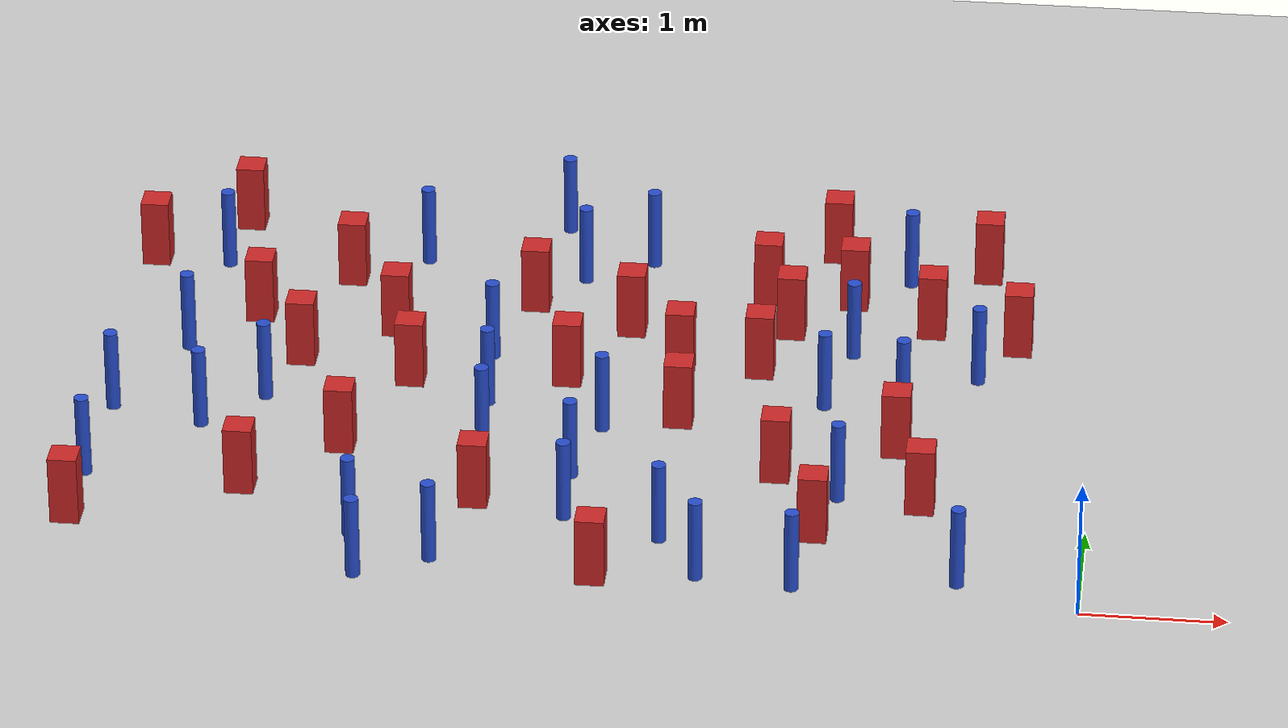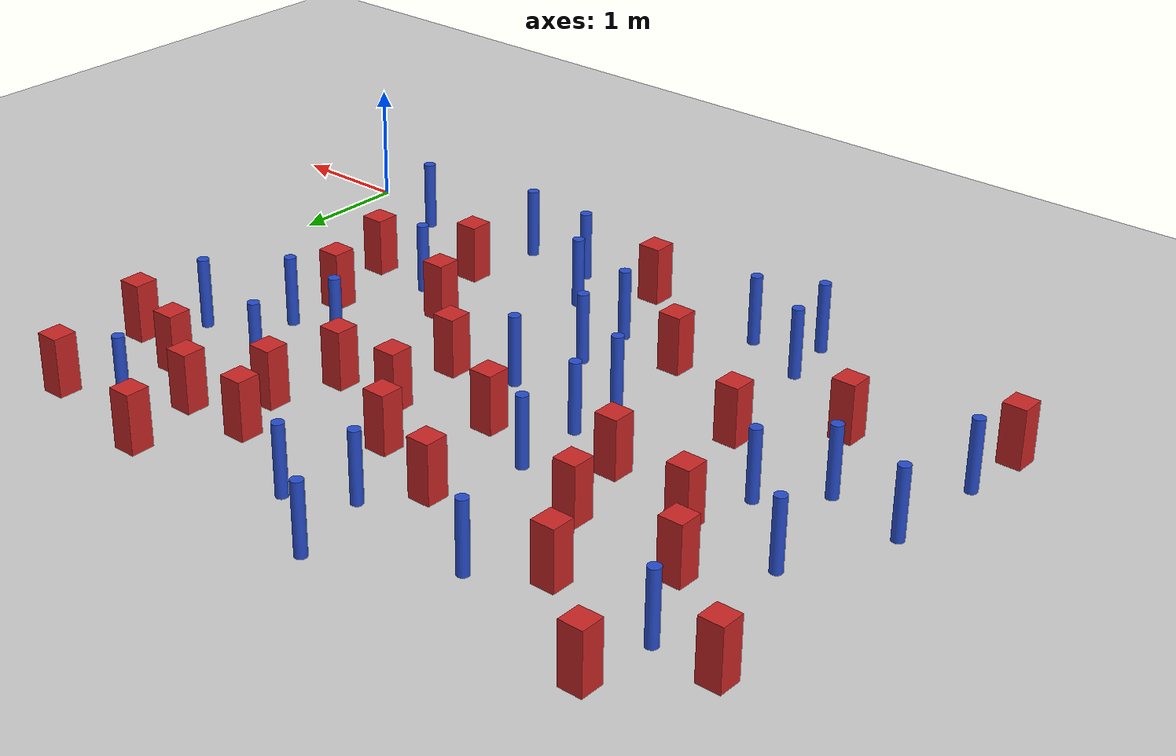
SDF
<sdf version="1.6">
 <world name="default">
  <model name="ground_plane">
   <static>1</static>
   <link name="link">
    <collision name="collision">
     <geometry><plane><normal>0 0 1</normal><size>100 100</size></plane></geometry>
     <surface><friction><ode><mu>100</mu><mu2>50</mu2></ode></friction></surface>
    </collision>
    <visual name="visual">
     <cast_shadows>0</cast_shadows>
     <geometry><plane><normal>0 0 1</normal><size>100 100</size></plane></geometry>
     <material>
      <ambient>1.0 1.0 1.0 1.0</ambient>
      <diffuse>0.8 0.8 0.8 1.0</diffuse>
      <specular>0.01 0.01 0.01 1.000000</specular>
     </material>
    </visual>
   </link>
  </model>
  <model name="square_post_obstacle0">
   <static>true</static>
   <pose>-1.84166888326 0.796225283095 1.91545236811e-07 -7.35059704564e-06 1.12565212e-07 2.39332434364e-05</pose>
   <link name="link">
    <pose>0 0 0.25 0 -0 0</pose>
    <inertial>
     <mass>100</mass>
     <inertia>
      <ixx>0.166667</ixx>
      <ixy>0</ixy>
      <ixz>0</ixz>
      <iyy>0.166667</iyy>
      <iyz>0</iyz>
      <izz>0.166667</izz>
     </inertia>
    </inertial>
    <collision name="collision"><geometry><box><size>.2 .2 .5</size></box></geometry></collision>
    <visual name="visual">
     <geometry><box><size>.2 .2 .5</size></box></geometry>
     <material>
      <script><name>Gazebo/Red</name><uri>file://media/materials/scripts/gazebo.material</uri></script>
     </material>
    </visual>
   </link>
  </model>
  <model name="pole_obstacle2">
   <static>true</static>
   <pose>-4.24991896851 2.30409226021 7.38925637345e-09 -8.47170692798e-08 1.24976764937e-08 -1.74513093023e-07</pose>
   <link name="link">
    <pose>0 0 0.3 0 -0 0</pose>
    <inertial>
     <mass>1</mass>
     <inertia><ixx>0.145833</ixx><ixy>0</ixy><ixz>0</ixz><iyy>0.145833</iyy><iyz>0</iyz><izz>0.125</izz></inertia>
    </inertial>
    <collision name="collision">
     <geometry><cylinder><radius>0.05</radius><length>.6</length></cylinder></geometry>
    </collision>
    <visual name="visual">
     <geometry><cylinder><radius>0.05</radius><length>.6</length></cylinder></geometry>
     <material>
      <script><name>Gazebo/Blue</name><uri>file://media/materials/scripts/gazebo.material</uri></script>
     </material>
    </visual>
   </link>
  </model>
  <model name="square_post_obstacle2">
   <static>true</static>
   <pose>-6.92443869913 0.52097010561 1.91545236811e-07 -7.35059704564e-06 1.12565212e-07 2.39332434364e-05</pose>
   <link name="link">
    <pose>0 0 0.25 0 -0 0</pose>
    <inertial>
     <mass>100</mass>
     <inertia>
      <ixx>0.166667</ixx>
      <ixy>0</ixy>
      <ixz>0</ixz>
      <iyy>0.166667</iyy>
      <iyz>0</iyz>
      <izz>0.166667</izz>
     </inertia>
    </inertial>
    <collision name="collision"><geometry><box><size>.2 .2 .5</size></box></geometry></collision>
    <visual name="visual">
     <geometry><box><size>.2 .2 .5</size></box></geometry>
     <material>
      <script><name>Gazebo/Red</name><uri>file://media/materials/scripts/gazebo.material</uri></script>
     </material>
    </visual>
   </link>
  </model>
  <model name="pole_obstacle13">
   <static>true</static>
   <pose>-1.71100634658 1.28023424929 7.38925637345e-09 -8.471706928e-08 1.24976765079e-08 -1.74513093017e-07</pose>
   <link name="link">
    <pose>0 0 0.3 0 -0 0</pose>
    <inertial>
     <mass>1</mass>
     <inertia><ixx>0.145833</ixx><ixy>0</ixy><ixz>0</ixz><iyy>0.145833</iyy><iyz>0</iyz><izz>0.125</izz></inertia>
    </inertial>
    <collision name="collision">
     <geometry><cylinder><radius>0.05</radius><length>.6</length></cylinder></geometry>
    </collision>
    <visual name="visual">
     <geometry><cylinder><radius>0.05</radius><length>.6</length></cylinder></geometry>
     <material>
      <script><name>Gazebo/Blue</name><uri>file://media/materials/scripts/gazebo.material</uri></script>
     </material>
    </visual>
   </link>
  </model>
  <model name="pole_obstacle19">
   <static>true</static>
   <pose>-6.45855339897 2.84667445079 7.38925637345e-09 -8.47170692798e-08 1.24976764937e-08 -1.74513093023e-07</pose>
   <link name="link">
    <pose>0 0 0.3 0 -0 0</pose>
    <inertial>
     <mass>1</mass>
     <inertia><ixx>0.145833</ixx><ixy>0</ixy><ixz>0</ixz><iyy>0.145833</iyy><iyz>0</iyz><izz>0.125</izz></inertia>
    </inertial>
    <collision name="collision">
     <geometry><cylinder><radius>0.05</radius><length>.6</length></cylinder></geometry>
    </collision>
    <visual name="visual">
     <geometry><cylinder><radius>0.05</radius><length>.6</length></cylinder></geometry>
     <material>
      <script><name>Gazebo/Blue</name><uri>file://media/materials/scripts/gazebo.material</uri></script>
     </material>
    </visual>
   </link>
  </model>
  <model name="square_post_obstacle18">
   <static>true</static>
   <pose>-1.79494129415 3.93874397708 1.91545236811e-07 -7.35059704564e-06 1.12565212e-07 2.39332434364e-05</pose>
   <link name="link">
    <pose>0 0 0.25 0 -0 0</pose>
    <inertial>
     <mass>100</mass>
     <inertia>
      <ixx>0.166667</ixx>
      <ixy>0</ixy>
      <ixz>0</ixz>
      <iyy>0.166667</iyy>
      <iyz>0</iyz>
      <izz>0.166667</izz>
     </inertia>
    </inertial>
    <collision name="collision"><geometry><box><size>.2 .2 .5</size></box></geometry></collision>
    <visual name="visual">
     <geometry><box><size>.2 .2 .5</size></box></geometry>
     <material>
      <script><name>Gazebo/Red</name><uri>file://media/materials/scripts/gazebo.material</uri></script>
     </material>
    </visual>
   </link>
  </model>
  <model name="pole_obstacle24">
   <static>true</static>
   <pose>-3.95093065033 4.80170679499 7.38925637345e-09 -8.47170692799e-08 1.24976764985e-08 -1.74513093022e-07</pose>
   <link name="link">
    <pose>0 0 0.3 0 -0 0</pose>
    <inertial>
     <mass>1</mass>
     <inertia><ixx>0.145833</ixx><ixy>0</ixy><ixz>0</ixz><iyy>0.145833</iyy><iyz>0</iyz><izz>0.125</izz></inertia>
    </inertial>
    <collision name="collision">
     <geometry><cylinder><radius>0.05</radius><length>.6</length></cylinder></geometry>
    </collision>
    <visual name="visual">
     <geometry><cylinder><radius>0.05</radius><length>.6</length></cylinder></geometry>
     <material>
      <script><name>Gazebo/Blue</name><uri>file://media/materials/scripts/gazebo.material</uri></script>
     </material>
    </visual>
   </link>
  </model>
  <model name="pole_obstacle25">
   <static>true</static>
   <pose>-6.90251473835 1.09132299942 7.38925637345e-09 -8.471706928e-08 1.24976765134e-08 -1.74513093015e-07</pose>
   <link name="link">
    <pose>0 0 0.3 0 -0 0</pose>
    <inertial>
     <mass>1</mass>
     <inertia><ixx>0.145833</ixx><ixy>0</ixy><ixz>0</ixz><iyy>0.145833</iyy><iyz>0</iyz><izz>0.125</izz></inertia>
    </inertial>
    <collision name="collision">
     <geometry><cylinder><radius>0.05</radius><length>.6</length></cylinder></geometry>
    </collision>
    <visual name="visual">
     <geometry><cylinder><radius>0.05</radius><length>.6</length></cylinder></geometry>
     <material>
      <script><name>Gazebo/Blue</name><uri>file://media/materials/scripts/gazebo.material</uri></script>
     </material>
    </visual>
   </link>
  </model>
  <model name="pole_obstacle30">
   <static>true</static>
   <pose>-1.89825903132 2.48471601839 7.38925637345e-09 -8.47170692799e-08 1.24976765053e-08 -1.74513093017e-07</pose>
   <link name="link">
    <pose>0 0 0.3 0 -0 0</pose>
    <inertial>
     <mass>1</mass>
     <inertia><ixx>0.145833</ixx><ixy>0</ixy><ixz>0</ixz><iyy>0.145833</iyy><iyz>0</iyz><izz>0.125</izz></inertia>
    </inertial>
    <collision name="collision">
     <geometry><cylinder><radius>0.05</radius><length>.6</length></cylinder></geometry>
    </collision>
    <visual name="visual">
     <geometry><cylinder><radius>0.05</radius><length>.6</length></cylinder></geometry>
     <material>
      <script><name>Gazebo/Blue</name><uri>file://media/materials/scripts/gazebo.material</uri></script>
     </material>
    </visual>
   </link>
  </model>
  <model name="square_post_obstacle23">
   <static>true</static>
   <pose>-0.857699240844 4.41628509227 1.91545236811e-07 -7.35059704564e-06 1.12565212e-07 2.39332434364e-05</pose>
   <link name="link">
    <pose>0 0 0.25 0 -0 0</pose>
    <inertial>
     <mass>100</mass>
     <inertia>
      <ixx>0.166667</ixx>
      <ixy>0</ixy>
      <ixz>0</ixz>
      <iyy>0.166667</iyy>
      <iyz>0</iyz>
      <izz>0.166667</izz>
     </inertia>
    </inertial>
    <collision name="collision"><geometry><box><size>.2 .2 .5</size></box></geometry></collision>
    <visual name="visual">
     <geometry><box><size>.2 .2 .5</size></box></geometry>
     <material>
      <script><name>Gazebo/Red</name><uri>file://media/materials/scripts/gazebo.material</uri></script>
     </material>
    </visual>
   </link>
  </model>
  <model name="square_post_obstacle26">
   <static>true</static>
   <pose>-5.42709398877 3.93280804061 1.91545236811e-07 -7.35059704564e-06 1.12565212e-07 2.39332434364e-05</pose>
   <link name="link">
    <pose>0 0 0.25 0 -0 0</pose>
    <inertial>
     <mass>100</mass>
     <inertia>
      <ixx>0.166667</ixx>
      <ixy>0</ixy>
      <ixz>0</ixz>
      <iyy>0.166667</iyy>
      <iyz>0</iyz>
      <izz>0.166667</izz>
     </inertia>
    </inertial>
    <collision name="collision"><geometry><box><size>.2 .2 .5</size></box></geometry></collision>
    <visual name="visual">
     <geometry><box><size>.2 .2 .5</size></box></geometry>
     <material>
      <script><name>Gazebo/Red</name><uri>file://media/materials/scripts/gazebo.material</uri></script>
     </material>
    </visual>
   </link>
  </model>
  <model name="pole_obstacle36">
   <static>true</static>
   <pose>-4.87840879598 -0.0129772248864 7.38925637345e-09 -8.471706928e-08 1.24976765076e-08 -1.74513093018e-07</pose>
   <link name="link">
    <pose>0 0 0.3 0 -0 0</pose>
    <inertial>
     <mass>1</mass>
     <inertia><ixx>0.145833</ixx><ixy>0</ixy><ixz>0</ixz><iyy>0.145833</iyy><iyz>0</iyz><izz>0.125</izz></inertia>
    </inertial>
    <collision name="collision">
     <geometry><cylinder><radius>0.05</radius><length>.6</length></cylinder></geometry>
    </collision>
    <visual name="visual">
     <geometry><cylinder><radius>0.05</radius><length>.6</length></cylinder></geometry>
     <material>
      <script><name>Gazebo/Blue</name><uri>file://media/materials/scripts/gazebo.material</uri></script>
     </material>
    </visual>
   </link>
  </model>
  <model name="pole_obstacle60">
   <static>true</static>
   <pose>-1.92962845941 0.116779656312 7.38925637345e-09 -8.47170692799e-08 1.24976765089e-08 -1.74513093016e-07</pose>
   <link name="link">
    <pose>0 0 0.3 0 -0 0</pose>
    <inertial>
     <mass>1</mass>
     <inertia><ixx>0.145833</ixx><ixy>0</ixy><ixz>0</ixz><iyy>0.145833</iyy><iyz>0</iyz><izz>0.125</izz></inertia>
    </inertial>
    <collision name="collision">
     <geometry><cylinder><radius>0.05</radius><length>.6</length></cylinder></geometry>
    </collision>
    <visual name="visual">
     <geometry><cylinder><radius>0.05</radius><length>.6</length></cylinder></geometry>
     <material>
      <script><name>Gazebo/Blue</name><uri>file://media/materials/scripts/gazebo.material</uri></script>
     </material>
    </visual>
   </link>
  </model>
  <model name="square_post_obstacle48">
   <static>true</static>
   <pose>-3.2810798544 0.108381300336 1.91545236811e-07 -7.35059704564e-06 1.12565212e-07 2.39332434364e-05</pose>
   <link name="link">
    <pose>0 0 0.25 0 -0 0</pose>
    <inertial>
     <mass>100</mass>
     <inertia>
      <ixx>0.166667</ixx>
      <ixy>0</ixy>
      <ixz>0</ixz>
      <iyy>0.166667</iyy>
      <iyz>0</iyz>
      <izz>0.166667</izz>
     </inertia>
    </inertial>
    <collision name="collision"><geometry><box><size>.2 .2 .5</size></box></geometry></collision>
    <visual name="visual">
     <geometry><box><size>.2 .2 .5</size></box></geometry>
     <material>
      <script><name>Gazebo/Red</name><uri>file://media/materials/scripts/gazebo.material</uri></script>
     </material>
    </visual>
   </link>
  </model>
  <model name="square_post_obstacle52">
   <static>true</static>
   <pose>-2.21235901721 3.48319267639 1.91545236811e-07 -7.35059704564e-06 1.12565212e-07 2.39332434364e-05</pose>
   <link name="link">
    <pose>0 0 0.25 0 -0 0</pose>
    <inertial>
     <mass>100</mass>
     <inertia>
      <ixx>0.166667</ixx>
      <ixy>0</ixy>
      <ixz>0</ixz>
      <iyy>0.166667</iyy>
      <iyz>0</iyz>
      <izz>0.166667</izz>
     </inertia>
    </inertial>
    <collision name="collision"><geometry><box><size>.2 .2 .5</size></box></geometry></collision>
    <visual name="visual">
     <geometry><box><size>.2 .2 .5</size></box></geometry>
     <material>
      <script><name>Gazebo/Red</name><uri>file://media/materials/scripts/gazebo.material</uri></script>
     </material>
    </visual>
   </link>
  </model>
  <model name="square_post_obstacle53">
   <static>true</static>
   <pose>-1.35628569744 1.9452621509 1.91545236811e-07 -7.35059704564e-06 1.12565212e-07 2.39332434364e-05</pose>
   <link name="link">
    <pose>0 0 0.25 0 -0 0</pose>
    <inertial>
     <mass>100</mass>
     <inertia>
      <ixx>0.166667</ixx>
      <ixy>0</ixy>
      <ixz>0</ixz>
      <iyy>0.166667</iyy>
      <iyz>0</iyz>
      <izz>0.166667</izz>
     </inertia>
    </inertial>
    <collision name="collision"><geometry><box><size>.2 .2 .5</size></box></geometry></collision>
    <visual name="visual">
     <geometry><box><size>.2 .2 .5</size></box></geometry>
     <material>
      <script><name>Gazebo/Red</name><uri>file://media/materials/scripts/gazebo.material</uri></script>
     </material>
    </visual>
   </link>
  </model>
  <model name="square_post_obstacle56">
   <static>true</static>
   <pose>-5.01915212647 3.23879473327 1.91545236811e-07 -7.35059704564e-06 1.12565212e-07 2.39332434364e-05</pose>
   <link name="link">
    <pose>0 0 0.25 0 -0 0</pose>
    <inertial>
     <mass>100</mass>
     <inertia>
      <ixx>0.166667</ixx>
      <ixy>0</ixy>
      <ixz>0</ixz>
      <iyy>0.166667</iyy>
      <iyz>0</iyz>
      <izz>0.166667</izz>
     </inertia>
    </inertial>
    <collision name="collision"><geometry><box><size>.2 .2 .5</size></box></geometry></collision>
    <visual name="visual">
     <geometry><box><size>.2 .2 .5</size></box></geometry>
     <material>
      <script><name>Gazebo/Red</name><uri>file://media/materials/scripts/gazebo.material</uri></script>
     </material>
    </visual>
   </link>
  </model>
  <model name="pole_obstacle75">
   <static>true</static>
   <pose>-3.54913548603 0.852820549501 7.38925637345e-09 -8.471706928e-08 1.24976765177e-08 -1.74513093012e-07</pose>
   <link name="link">
    <pose>0 0 0.3 0 -0 0</pose>
    <inertial>
     <mass>1</mass>
     <inertia><ixx>0.145833</ixx><ixy>0</ixy><ixz>0</ixz><iyy>0.145833</iyy><iyz>0</iyz><izz>0.125</izz></inertia>
    </inertial>
    <collision name="collision">
     <geometry><cylinder><radius>0.05</radius><length>.6</length></cylinder></geometry>
    </collision>
    <visual name="visual">
     <geometry><cylinder><radius>0.05</radius><length>.6</length></cylinder></geometry>
     <material>
      <script><name>Gazebo/Blue</name><uri>file://media/materials/scripts/gazebo.material</uri></script>
     </material>
    </visual>
   </link>
  </model>
  <model name="pole_obstacle77">
   <static>true</static>
   <pose>-0.828081729767 0.271024163784 7.38925637345e-09 -8.471706928e-08 1.24976765127e-08 -1.74513093013e-07</pose>
   <link name="link">
    <pose>0 0 0.3 0 -0 0</pose>
    <inertial>
     <mass>1</mass>
     <inertia><ixx>0.145833</ixx><ixy>0</ixy><ixz>0</ixz><iyy>0.145833</iyy><iyz>0</iyz><izz>0.125</izz></inertia>
    </inertial>
    <collision name="collision">
     <geometry><cylinder><radius>0.05</radius><length>.6</length></cylinder></geometry>
    </collision>
    <visual name="visual">
     <geometry><cylinder><radius>0.05</radius><length>.6</length></cylinder></geometry>
     <material>
      <script><name>Gazebo/Blue</name><uri>file://media/materials/scripts/gazebo.material</uri></script>
     </material>
    </visual>
   </link>
  </model>
  <model name="pole_obstacle83">
   <static>true</static>
   <pose>-4.92048808278 4.24363847536 7.38925637345e-09 -8.47170692796e-08 1.24976764786e-08 -1.74513093032e-07</pose>
   <link name="link">
    <pose>0 0 0.3 0 -0 0</pose>
    <inertial>
     <mass>1</mass>
     <inertia><ixx>0.145833</ixx><ixy>0</ixy><ixz>0</ixz><iyy>0.145833</iyy><iyz>0</iyz><izz>0.125</izz></inertia>
    </inertial>
    <collision name="collision">
     <geometry><cylinder><radius>0.05</radius><length>.6</length></cylinder></geometry>
    </collision>
    <visual name="visual">
     <geometry><cylinder><radius>0.05</radius><length>.6</length></cylinder></geometry>
     <material>
      <script><name>Gazebo/Blue</name><uri>file://media/materials/scripts/gazebo.material</uri></script>
     </material>
    </visual>
   </link>
  </model>
  <model name="square_post_obstacle79">
   <static>true</static>
   <pose>-6.88968282874 4.08089302245 1.91545236811e-07 -7.35059704564e-06 1.12565212e-07 2.39332434364e-05</pose>
   <link name="link">
    <pose>0 0 0.25 0 -0 0</pose>
    <inertial>
     <mass>100</mass>
     <inertia>
      <ixx>0.166667</ixx>
      <ixy>0</ixy>
      <ixz>0</ixz>
      <iyy>0.166667</iyy>
      <iyz>0</iyz>
      <izz>0.166667</izz>
     </inertia>
    </inertial>
    <collision name="collision"><geometry><box><size>.2 .2 .5</size></box></geometry></collision>
    <visual name="visual">
     <geometry><box><size>.2 .2 .5</size></box></geometry>
     <material>
      <script><name>Gazebo/Red</name><uri>file://media/materials/scripts/gazebo.material</uri></script>
     </material>
    </visual>
   </link>
  </model>
  <model name="square_post_obstacle82">
   <static>true</static>
   <pose>-2.8935753535 2.18808637038 1.91545236811e-07 -7.35059704564e-06 1.12565212e-07 2.39332434364e-05</pose>
   <link name="link">
    <pose>0 0 0.25 0 -0 0</pose>
    <inertial>
     <mass>100</mass>
     <inertia>
      <ixx>0.166667</ixx>
      <ixy>0</ixy>
      <ixz>0</ixz>
      <iyy>0.166667</iyy>
      <iyz>0</iyz>
      <izz>0.166667</izz>
     </inertia>
    </inertial>
    <collision name="collision"><geometry><box><size>.2 .2 .5</size></box></geometry></collision>
    <visual name="visual">
     <geometry><box><size>.2 .2 .5</size></box></geometry>
     <material>
      <script><name>Gazebo/Red</name><uri>file://media/materials/scripts/gazebo.material</uri></script>
     </material>
    </visual>
   </link>
  </model>
  <model name="square_post_obstacle87">
   <static>true</static>
   <pose>-6.01334357902 3.34565354494 1.91545236811e-07 -7.35059704564e-06 1.12565212e-07 2.39332434364e-05</pose>
   <link name="link">
    <pose>0 0 0.25 0 -0 0</pose>
    <inertial>
     <mass>100</mass>
     <inertia>
      <ixx>0.166667</ixx>
      <ixy>0</ixy>
      <ixz>0</ixz>
      <iyy>0.166667</iyy>
      <iyz>0</iyz>
      <izz>0.166667</izz>
     </inertia>
    </inertial>
    <collision name="collision"><geometry><box><size>.2 .2 .5</size></box></geometry></collision>
    <visual name="visual">
     <geometry><box><size>.2 .2 .5</size></box></geometry>
     <material>
      <script><name>Gazebo/Red</name><uri>file://media/materials/scripts/gazebo.material</uri></script>
     </material>
    </visual>
   </link>
  </model>
  <model name="square_post_obstacle97">
   <static>true</static>
   <pose>-2.15792454071 1.53755298461 1.91545236811e-07 -7.35059704564e-06 1.12565212e-07 2.39332434364e-05</pose>
   <link name="link">
    <pose>0 0 0.25 0 -0 0</pose>
    <inertial>
     <mass>100</mass>
     <inertia>
      <ixx>0.166667</ixx>
      <ixy>0</ixy>
      <ixz>0</ixz>
      <iyy>0.166667</iyy>
      <iyz>0</iyz>
      <izz>0.166667</izz>
     </inertia>
    </inertial>
    <collision name="collision"><geometry><box><size>.2 .2 .5</size></box></geometry></collision>
    <visual name="visual">
     <geometry><box><size>.2 .2 .5</size></box></geometry>
     <material>
      <script><name>Gazebo/Red</name><uri>file://media/materials/scripts/gazebo.material</uri></script>
     </material>
    </visual>
   </link>
  </model>
  <model name="square_post_obstacle108">
   <static>true</static>
   <pose>-4.82991864865 2.56284255322 1.91545236811e-07 -7.35059704564e-06 1.12565212e-07 2.39332434364e-05</pose>
   <link name="link">
    <pose>0 0 0.25 0 -0 0</pose>
    <inertial>
     <mass>100</mass>
     <inertia>
      <ixx>0.166667</ixx>
      <ixy>0</ixy>
      <ixz>0</ixz>
      <iyy>0.166667</iyy>
      <iyz>0</iyz>
      <izz>0.166667</izz>
     </inertia>
    </inertial>
    <collision name="collision"><geometry><box><size>.2 .2 .5</size></box></geometry></collision>
    <visual name="visual">
     <geometry><box><size>.2 .2 .5</size></box></geometry>
     <material>
      <script><name>Gazebo/Red</name><uri>file://media/materials/scripts/gazebo.material</uri></script>
     </material>
    </visual>
   </link>
  </model>
  <model name="pole_obstacle114">
   <static>true</static>
   <pose>-5.81493300668 2.22496002811 7.38925637345e-09 -8.47170692798e-08 1.24976764937e-08 -1.74513093023e-07</pose>
   <link name="link">
    <pose>0 0 0.3 0 -0 0</pose>
    <inertial>
     <mass>1</mass>
     <inertia><ixx>0.145833</ixx><ixy>0</ixy><ixz>0</ixz><iyy>0.145833</iyy><iyz>0</iyz><izz>0.125</izz></inertia>
    </inertial>
    <collision name="collision">
     <geometry><cylinder><radius>0.05</radius><length>.6</length></cylinder></geometry>
    </collision>
    <visual name="visual">
     <geometry><cylinder><radius>0.05</radius><length>.6</length></cylinder></geometry>
     <material>
      <script><name>Gazebo/Blue</name><uri>file://media/materials/scripts/gazebo.material</uri></script>
     </material>
    </visual>
   </link>
  </model>
  <model name="square_post_obstacle114">
   <static>true</static>
   <pose>-0.591307790971 3.40807365381 1.91545236811e-07 -7.35059704564e-06 1.12565212e-07 2.39332434364e-05</pose>
   <link name="link">
    <pose>0 0 0.25 0 -0 0</pose>
    <inertial>
     <mass>100</mass>
     <inertia>
      <ixx>0.166667</ixx>
      <ixy>0</ixy>
      <ixz>0</ixz>
      <iyy>0.166667</iyy>
      <iyz>0</iyz>
      <izz>0.166667</izz>
     </inertia>
    </inertial>
    <collision name="collision"><geometry><box><size>.2 .2 .5</size></box></geometry></collision>
    <visual name="visual">
     <geometry><box><size>.2 .2 .5</size></box></geometry>
     <material>
      <script><name>Gazebo/Red</name><uri>file://media/materials/scripts/gazebo.material</uri></script>
     </material>
    </visual>
   </link>
  </model>
  <model name="square_post_obstacle120">
   <static>true</static>
   <pose>-5.19561572266 1.62065021869 1.91545236811e-07 -7.35059704564e-06 1.12565212e-07 2.39332434364e-05</pose>
   <link name="link">
    <pose>0 0 0.25 0 -0 0</pose>
    <inertial>
     <mass>100</mass>
     <inertia>
      <ixx>0.166667</ixx>
      <ixy>0</ixy>
      <ixz>0</ixz>
      <iyy>0.166667</iyy>
      <iyz>0</iyz>
      <izz>0.166667</izz>
     </inertia>
    </inertial>
    <collision name="collision"><geometry><box><size>.2 .2 .5</size></box></geometry></collision>
    <visual name="visual">
     <geometry><box><size>.2 .2 .5</size></box></geometry>
     <material>
      <script><name>Gazebo/Red</name><uri>file://media/materials/scripts/gazebo.material</uri></script>
     </material>
    </visual>
   </link>
  </model>
  <model name="pole_obstacle122">
   <static>true</static>
   <pose>-4.39364811315 0.233506268186 7.38925637345e-09 -8.471706928e-08 1.24976765136e-08 -1.74513093014e-07</pose>
   <link name="link">
    <pose>0 0 0.3 0 -0 0</pose>
    <inertial>
     <mass>1</mass>
     <inertia><ixx>0.145833</ixx><ixy>0</ixy><ixz>0</ixz><iyy>0.145833</iyy><iyz>0</iyz><izz>0.125</izz></inertia>
    </inertial>
    <collision name="collision">
     <geometry><cylinder><radius>0.05</radius><length>.6</length></cylinder></geometry>
    </collision>
    <visual name="visual">
     <geometry><cylinder><radius>0.05</radius><length>.6</length></cylinder></geometry>
     <material>
      <script><name>Gazebo/Blue</name><uri>file://media/materials/scripts/gazebo.material</uri></script>
     </material>
    </visual>
   </link>
  </model>
  <model name="pole_obstacle123">
   <static>true</static>
   <pose>-4.22449619167 1.77889194608 7.38925637345e-09 -8.471706928e-08 1.24976765134e-08 -1.74513093015e-07</pose>
   <link name="link">
    <pose>0 0 0.3 0 -0 0</pose>
    <inertial>
     <mass>1</mass>
     <inertia><ixx>0.145833</ixx><ixy>0</ixy><ixz>0</ixz><iyy>0.145833</iyy><iyz>0</iyz><izz>0.125</izz></inertia>
    </inertial>
    <collision name="collision">
     <geometry><cylinder><radius>0.05</radius><length>.6</length></cylinder></geometry>
    </collision>
    <visual name="visual">
     <geometry><cylinder><radius>0.05</radius><length>.6</length></cylinder></geometry>
     <material>
      <script><name>Gazebo/Blue</name><uri>file://media/materials/scripts/gazebo.material</uri></script>
     </material>
    </visual>
   </link>
  </model>
  <model name="pole_obstacle125">
   <static>true</static>
   <pose>-3.28691719615 4.363153871 7.38925637345e-09 -8.47170692794e-08 1.24976764468e-08 -1.7451309304e-07</pose>
   <link name="link">
    <pose>0 0 0.3 0 -0 0</pose>
    <inertial>
     <mass>1</mass>
     <inertia><ixx>0.145833</ixx><ixy>0</ixy><ixz>0</ixz><iyy>0.145833</iyy><iyz>0</iyz><izz>0.125</izz></inertia>
    </inertial>
    <collision name="collision">
     <geometry><cylinder><radius>0.05</radius><length>.6</length></cylinder></geometry>
    </collision>
    <visual name="visual">
     <geometry><cylinder><radius>0.05</radius><length>.6</length></cylinder></geometry>
     <material>
      <script><name>Gazebo/Blue</name><uri>file://media/materials/scripts/gazebo.material</uri></script>
     </material>
    </visual>
   </link>
  </model>
  <model name="square_post_obstacle132">
   <static>true</static>
   <pose>-6.2821920136 4.66394013239 1.91545236811e-07 -7.35059704564e-06 1.12565212e-07 2.39332434364e-05</pose>
   <link name="link">
    <pose>0 0 0.25 0 -0 0</pose>
    <inertial>
     <mass>100</mass>
     <inertia>
      <ixx>0.166667</ixx>
      <ixy>0</ixy>
      <ixz>0</ixz>
      <iyy>0.166667</iyy>
      <iyz>0</iyz>
      <izz>0.166667</izz>
     </inertia>
    </inertial>
    <collision name="collision"><geometry><box><size>.2 .2 .5</size></box></geometry></collision>
    <visual name="visual">
     <geometry><box><size>.2 .2 .5</size></box></geometry>
     <material>
      <script><name>Gazebo/Red</name><uri>file://media/materials/scripts/gazebo.material</uri></script>
     </material>
    </visual>
   </link>
  </model>
  <model name="pole_obstacle137">
   <static>true</static>
   <pose>-6.20926822166 1.81255780626 7.38925637345e-09 -8.471706928e-08 1.24976765134e-08 -1.74513093015e-07</pose>
   <link name="link">
    <pose>0 0 0.3 0 -0 0</pose>
    <inertial>
     <mass>1</mass>
     <inertia><ixx>0.145833</ixx><ixy>0</ixy><ixz>0</ixz><iyy>0.145833</iyy><iyz>0</iyz><izz>0.125</izz></inertia>
    </inertial>
    <collision name="collision">
     <geometry><cylinder><radius>0.05</radius><length>.6</length></cylinder></geometry>
    </collision>
    <visual name="visual">
     <geometry><cylinder><radius>0.05</radius><length>.6</length></cylinder></geometry>
     <material>
      <script><name>Gazebo/Blue</name><uri>file://media/materials/scripts/gazebo.material</uri></script>
     </material>
    </visual>
   </link>
  </model>
  <model name="pole_obstacle139">
   <static>true</static>
   <pose>-4.2930610036 2.9426122269 7.38925637345e-09 -8.47170692798e-08 1.24976764937e-08 -1.74513093023e-07</pose>
   <link name="link">
    <pose>0 0 0.3 0 -0 0</pose>
    <inertial>
     <mass>1</mass>
     <inertia><ixx>0.145833</ixx><ixy>0</ixy><ixz>0</ixz><iyy>0.145833</iyy><iyz>0</iyz><izz>0.125</izz></inertia>
    </inertial>
    <collision name="collision">
     <geometry><cylinder><radius>0.05</radius><length>.6</length></cylinder></geometry>
    </collision>
    <visual name="visual">
     <geometry><cylinder><radius>0.05</radius><length>.6</length></cylinder></geometry>
     <material>
      <script><name>Gazebo/Blue</name><uri>file://media/materials/scripts/gazebo.material</uri></script>
     </material>
    </visual>
   </link>
  </model>
  <model name="pole_obstacle143">
   <static>true</static>
   <pose>-2.58420724374 0.185829936448 7.38925637345e-09 -8.47170692801e-08 1.24976765195e-08 -1.74513093011e-07</pose>
   <link name="link">
    <pose>0 0 0.3 0 -0 0</pose>
    <inertial>
     <mass>1</mass>
     <inertia><ixx>0.145833</ixx><ixy>0</ixy><ixz>0</ixz><iyy>0.145833</iyy><iyz>0</iyz><izz>0.125</izz></inertia>
    </inertial>
    <collision name="collision">
     <geometry><cylinder><radius>0.05</radius><length>.6</length></cylinder></geometry>
    </collision>
    <visual name="visual">
     <geometry><cylinder><radius>0.05</radius><length>.6</length></cylinder></geometry>
     <material>
      <script><name>Gazebo/Blue</name><uri>file://media/materials/scripts/gazebo.material</uri></script>
     </material>
    </visual>
   </link>
  </model>
  <model name="pole_obstacle144">
   <static>true</static>
   <pose>-1.74920956709 3.20711275899 7.38925637345e-09 -8.47170692799e-08 1.24976765053e-08 -1.74513093017e-07</pose>
   <link name="link">
    <pose>0 0 0.3 0 -0 0</pose>
    <inertial>
     <mass>1</mass>
     <inertia><ixx>0.145833</ixx><ixy>0</ixy><ixz>0</ixz><iyy>0.145833</iyy><iyz>0</iyz><izz>0.125</izz></inertia>
    </inertial>
    <collision name="collision">
     <geometry><cylinder><radius>0.05</radius><length>.6</length></cylinder></geometry>
    </collision>
    <visual name="visual">
     <geometry><cylinder><radius>0.05</radius><length>.6</length></cylinder></geometry>
     <material>
      <script><name>Gazebo/Blue</name><uri>file://media/materials/scripts/gazebo.material</uri></script>
     </material>
    </visual>
   </link>
  </model>
  <model name="square_post_obstacle142">
   <static>true</static>
   <pose>-4.18539245256 1.0003989443 1.91545236811e-07 -7.35059704564e-06 1.12565212e-07 2.39332434364e-05</pose>
   <link name="link">
    <pose>0 0 0.25 0 -0 0</pose>
    <inertial>
     <mass>100</mass>
     <inertia>
      <ixx>0.166667</ixx>
      <ixy>0</ixy>
      <ixz>0</ixz>
      <iyy>0.166667</iyy>
      <iyz>0</iyz>
      <izz>0.166667</izz>
     </inertia>
    </inertial>
    <collision name="collision"><geometry><box><size>.2 .2 .5</size></box></geometry></collision>
    <visual name="visual">
     <geometry><box><size>.2 .2 .5</size></box></geometry>
     <material>
      <script><name>Gazebo/Red</name><uri>file://media/materials/scripts/gazebo.material</uri></script>
     </material>
    </visual>
   </link>
  </model>
  <model name="square_post_obstacle144">
   <static>true</static>
   <pose>-4.06904151334 3.69124016544 1.91545236811e-07 -7.35059704564e-06 1.12565212e-07 2.39332434364e-05</pose>
   <link name="link">
    <pose>0 0 0.25 0 -0 0</pose>
    <inertial>
     <mass>100</mass>
     <inertia>
      <ixx>0.166667</ixx>
      <ixy>0</ixy>
      <ixz>0</ixz>
      <iyy>0.166667</iyy>
      <iyz>0</iyz>
      <izz>0.166667</izz>
     </inertia>
    </inertial>
    <collision name="collision"><geometry><box><size>.2 .2 .5</size></box></geometry></collision>
    <visual name="visual">
     <geometry><box><size>.2 .2 .5</size></box></geometry>
     <material>
      <script><name>Gazebo/Red</name><uri>file://media/materials/scripts/gazebo.material</uri></script>
     </material>
    </visual>
   </link>
  </model>
  <model name="square_post_obstacle155">
   <static>true</static>
   <pose>-2.41719369752 3.95034800189 1.91545236811e-07 -7.35059704564e-06 1.12565212e-07 2.39332434364e-05</pose>
   <link name="link">
    <pose>0 0 0.25 0 -0 0</pose>
    <inertial>
     <mass>100</mass>
     <inertia>
      <ixx>0.166667</ixx>
      <ixy>0</ixy>
      <ixz>0</ixz>
      <iyy>0.166667</iyy>
      <iyz>0</iyz>
      <izz>0.166667</izz>
     </inertia>
    </inertial>
    <collision name="collision"><geometry><box><size>.2 .2 .5</size></box></geometry></collision>
    <visual name="visual">
     <geometry><box><size>.2 .2 .5</size></box></geometry>
     <material>
      <script><name>Gazebo/Red</name><uri>file://media/materials/scripts/gazebo.material</uri></script>
     </material>
    </visual>
   </link>
  </model>
  <model name="square_post_obstacle157">
   <static>true</static>
   <pose>-3.34788894406 3.4032372411 1.91545236811e-07 -7.35059704564e-06 1.12565212e-07 2.39332434364e-05</pose>
   <link name="link">
    <pose>0 0 0.25 0 -0 0</pose>
    <inertial>
     <mass>100</mass>
     <inertia>
      <ixx>0.166667</ixx>
      <ixy>0</ixy>
      <ixz>0</ixz>
      <iyy>0.166667</iyy>
      <iyz>0</iyz>
      <izz>0.166667</izz>
     </inertia>
    </inertial>
    <collision name="collision"><geometry><box><size>.2 .2 .5</size></box></geometry></collision>
    <visual name="visual">
     <geometry><box><size>.2 .2 .5</size></box></geometry>
     <material>
      <script><name>Gazebo/Red</name><uri>file://media/materials/scripts/gazebo.material</uri></script>
     </material>
    </visual>
   </link>
  </model>
  <model name="square_post_obstacle160">
   <static>true</static>
   <pose>-3.7269110861 2.67064120237 1.91545236811e-07 -7.35059704564e-06 1.12565212e-07 2.39332434364e-05</pose>
   <link name="link">
    <pose>0 0 0.25 0 -0 0</pose>
    <inertial>
     <mass>100</mass>
     <inertia>
      <ixx>0.166667</ixx>
      <ixy>0</ixy>
      <ixz>0</ixz>
      <iyy>0.166667</iyy>
      <iyz>0</iyz>
      <izz>0.166667</izz>
     </inertia>
    </inertial>
    <collision name="collision"><geometry><box><size>.2 .2 .5</size></box></geometry></collision>
    <visual name="visual">
     <geometry><box><size>.2 .2 .5</size></box></geometry>
     <material>
      <script><name>Gazebo/Red</name><uri>file://media/materials/scripts/gazebo.material</uri></script>
     </material>
    </visual>
   </link>
  </model>
  <model name="square_post_obstacle162">
   <static>true</static>
   <pose>-5.63460304776 2.77464821181 1.91545236811e-07 -7.35059704564e-06 1.12565212e-07 2.39332434364e-05</pose>
   <link name="link">
    <pose>0 0 0.25 0 -0 0</pose>
    <inertial>
     <mass>100</mass>
     <inertia>
      <ixx>0.166667</ixx>
      <ixy>0</ixy>
      <ixz>0</ixz>
      <iyy>0.166667</iyy>
      <iyz>0</iyz>
      <izz>0.166667</izz>
     </inertia>
    </inertial>
    <collision name="collision"><geometry><box><size>.2 .2 .5</size></box></geometry></collision>
    <visual name="visual">
     <geometry><box><size>.2 .2 .5</size></box></geometry>
     <material>
      <script><name>Gazebo/Red</name><uri>file://media/materials/scripts/gazebo.material</uri></script>
     </material>
    </visual>
   </link>
  </model>
  <model name="square_post_obstacle164">
   <static>true</static>
   <pose>-2.38788847021 2.91514629639 1.91545236811e-07 -7.35059704564e-06 1.12565212e-07 2.39332434364e-05</pose>
   <link name="link">
    <pose>0 0 0.25 0 -0 0</pose>
    <inertial>
     <mass>100</mass>
     <inertia>
      <ixx>0.166667</ixx>
      <ixy>0</ixy>
      <ixz>0</ixz>
      <iyy>0.166667</iyy>
      <iyz>0</iyz>
      <izz>0.166667</izz>
     </inertia>
    </inertial>
    <collision name="collision"><geometry><box><size>.2 .2 .5</size></box></geometry></collision>
    <visual name="visual">
     <geometry><box><size>.2 .2 .5</size></box></geometry>
     <material>
      <script><name>Gazebo/Red</name><uri>file://media/materials/scripts/gazebo.material</uri></script>
     </material>
    </visual>
   </link>
  </model>
  <model name="pole_obstacle174">
   <static>true</static>
   <pose>-6.85638800964 1.98134842607 7.38925637345e-09 -8.471706928e-08 1.24976765177e-08 -1.74513093012e-07</pose>
   <link name="link">
    <pose>0 0 0.3 0 -0 0</pose>
    <inertial>
     <mass>1</mass>
     <inertia><ixx>0.145833</ixx><ixy>0</ixy><ixz>0</ixz><iyy>0.145833</iyy><iyz>0</iyz><izz>0.125</izz></inertia>
    </inertial>
    <collision name="collision">
     <geometry><cylinder><radius>0.05</radius><length>.6</length></cylinder></geometry>
    </collision>
    <visual name="visual">
     <geometry><cylinder><radius>0.05</radius><length>.6</length></cylinder></geometry>
     <material>
      <script><name>Gazebo/Blue</name><uri>file://media/materials/scripts/gazebo.material</uri></script>
     </material>
    </visual>
   </link>
  </model>
  <model name="pole_obstacle183">
   <static>true</static>
   <pose>-4.97478725122 0.496109577653 7.38925637345e-09 -8.47170692799e-08 1.24976765124e-08 -1.74513093015e-07</pose>
   <link name="link">
    <pose>0 0 0.3 0 -0 0</pose>
    <inertial>
     <mass>1</mass>
     <inertia><ixx>0.145833</ixx><ixy>0</ixy><ixz>0</ixz><iyy>0.145833</iyy><iyz>0</iyz><izz>0.125</izz></inertia>
    </inertial>
    <collision name="collision">
     <geometry><cylinder><radius>0.05</radius><length>.6</length></cylinder></geometry>
    </collision>
    <visual name="visual">
     <geometry><cylinder><radius>0.05</radius><length>.6</length></cylinder></geometry>
     <material>
      <script><name>Gazebo/Blue</name><uri>file://media/materials/scripts/gazebo.material</uri></script>
     </material>
    </visual>
   </link>
  </model>
  <model name="pole_obstacle184">
   <static>true</static>
   <pose>-0.847567713841 2.9417875932 7.38925637345e-09 -8.47170692799e-08 1.2497676509e-08 -1.74513093016e-07</pose>
   <link name="link">
    <pose>0 0 0.3 0 -0 0</pose>
    <inertial>
     <mass>1</mass>
     <inertia><ixx>0.145833</ixx><ixy>0</ixy><ixz>0</ixz><iyy>0.145833</iyy><iyz>0</iyz><izz>0.125</izz></inertia>
    </inertial>
    <collision name="collision">
     <geometry><cylinder><radius>0.05</radius><length>.6</length></cylinder></geometry>
    </collision>
    <visual name="visual">
     <geometry><cylinder><radius>0.05</radius><length>.6</length></cylinder></geometry>
     <material>
      <script><name>Gazebo/Blue</name><uri>file://media/materials/scripts/gazebo.material</uri></script>
     </material>
    </visual>
   </link>
  </model>
  <model name="square_post_obstacle191">
   <static>true</static>
   <pose>-5.80418802004 1.0213523448 1.91545236811e-07 -7.35059704564e-06 1.12565212e-07 2.39332434364e-05</pose>
   <link name="link">
    <pose>0 0 0.25 0 -0 0</pose>
    <inertial>
     <mass>100</mass>
     <inertia>
      <ixx>0.166667</ixx>
      <ixy>0</ixy>
      <ixz>0</ixz>
      <iyy>0.166667</iyy>
      <iyz>0</iyz>
      <izz>0.166667</izz>
     </inertia>
    </inertial>
    <collision name="collision"><geometry><box><size>.2 .2 .5</size></box></geometry></collision>
    <visual name="visual">
     <geometry><box><size>.2 .2 .5</size></box></geometry>
     <material>
      <script><name>Gazebo/Red</name><uri>file://media/materials/scripts/gazebo.material</uri></script>
     </material>
    </visual>
   </link>
  </model>
  <model name="square_post_obstacle193">
   <static>true</static>
   <pose>-1.14007660729 1.22074090172 1.91545236811e-07 -7.35059704564e-06 1.12565212e-07 2.39332434364e-05</pose>
   <link name="link">
    <pose>0 0 0.25 0 -0 0</pose>
    <inertial>
     <mass>100</mass>
     <inertia>
      <ixx>0.166667</ixx>
      <ixy>0</ixy>
      <ixz>0</ixz>
      <iyy>0.166667</iyy>
      <iyz>0</iyz>
      <izz>0.166667</izz>
     </inertia>
    </inertial>
    <collision name="collision"><geometry><box><size>.2 .2 .5</size></box></geometry></collision>
    <visual name="visual">
     <geometry><box><size>.2 .2 .5</size></box></geometry>
     <material>
      <script><name>Gazebo/Red</name><uri>file://media/materials/scripts/gazebo.material</uri></script>
     </material>
    </visual>
   </link>
  </model>
  <model name="pole_obstacle189">
   <static>true</static>
   <pose>-2.87564456156 0.631773801549 7.38925637345e-09 -8.471706928e-08 1.24976765177e-08 -1.74513093012e-07</pose>
   <link name="link">
    <pose>0 0 0.3 0 -0 0</pose>
    <inertial>
     <mass>1</mass>
     <inertia><ixx>0.145833</ixx><ixy>0</ixy><ixz>0</ixz><iyy>0.145833</iyy><iyz>0</iyz><izz>0.125</izz></inertia>
    </inertial>
    <collision name="collision">
     <geometry><cylinder><radius>0.05</radius><length>.6</length></cylinder></geometry>
    </collision>
    <visual name="visual">
     <geometry><cylinder><radius>0.05</radius><length>.6</length></cylinder></geometry>
     <material>
      <script><name>Gazebo/Blue</name><uri>file://media/materials/scripts/gazebo.material</uri></script>
     </material>
    </visual>
   </link>
  </model>
  <model name="square_post_obstacle206">
   <static>true</static>
   <pose>-1.21524004632 3.5897588537 1.91545236811e-07 -7.35059704564e-06 1.12565212e-07 2.39332434364e-05</pose>
   <link name="link">
    <pose>0 0 0.25 0 -0 0</pose>
    <inertial>
     <mass>100</mass>
     <inertia>
      <ixx>0.166667</ixx>
      <ixy>0</ixy>
      <ixz>0</ixz>
      <iyy>0.166667</iyy>
      <iyz>0</iyz>
      <izz>0.166667</izz>
     </inertia>
    </inertial>
    <collision name="collision"><geometry><box><size>.2 .2 .5</size></box></geometry></collision>
    <visual name="visual">
     <geometry><box><size>.2 .2 .5</size></box></geometry>
     <material>
      <script><name>Gazebo/Red</name><uri>file://media/materials/scripts/gazebo.material</uri></script>
     </material>
    </visual>
   </link>
  </model>
  <model name="pole_obstacle200">
   <static>true</static>
   <pose>-6.35729008537 4.04980008113 7.38925637345e-09 -8.47170692797e-08 1.24976764805e-08 -1.74513093031e-07</pose>
   <link name="link">
    <pose>0 0 0.3 0 -0 0</pose>
    <inertial>
     <mass>1</mass>
     <inertia><ixx>0.145833</ixx><ixy>0</ixy><ixz>0</ixz><iyy>0.145833</iyy><iyz>0</iyz><izz>0.125</izz></inertia>
    </inertial>
    <collision name="collision">
     <geometry><cylinder><radius>0.05</radius><length>.6</length></cylinder></geometry>
    </collision>
    <visual name="visual">
     <geometry><cylinder><radius>0.05</radius><length>.6</length></cylinder></geometry>
     <material>
      <script><name>Gazebo/Blue</name><uri>file://media/materials/scripts/gazebo.material</uri></script>
     </material>
    </visual>
   </link>
  </model>
  <model name="pole_obstacle205">
   <static>true</static>
   <pose>-1.34739804573 2.45075323857 7.38925637345e-09 -8.47170692799e-08 1.24976765053e-08 -1.74513093017e-07</pose>
   <link name="link">
    <pose>0 0 0.3 0 -0 0</pose>
    <inertial>
     <mass>1</mass>
     <inertia><ixx>0.145833</ixx><ixy>0</ixy><ixz>0</ixz><iyy>0.145833</iyy><iyz>0</iyz><izz>0.125</izz></inertia>
    </inertial>
    <collision name="collision">
     <geometry><cylinder><radius>0.05</radius><length>.6</length></cylinder></geometry>
    </collision>
    <visual name="visual">
     <geometry><cylinder><radius>0.05</radius><length>.6</length></cylinder></geometry>
     <material>
      <script><name>Gazebo/Blue</name><uri>file://media/materials/scripts/gazebo.material</uri></script>
     </material>
    </visual>
   </link>
  </model>
  <model name="pole_obstacle208">
   <static>true</static>
   <pose>-3.41510478648 2.03485950592 7.38925637345e-09 -8.47170692799e-08 1.24976765087e-08 -1.74513093015e-07</pose>
   <link name="link">
    <pose>0 0 0.3 0 -0 0</pose>
    <inertial>
     <mass>1</mass>
     <inertia><ixx>0.145833</ixx><ixy>0</ixy><ixz>0</ixz><iyy>0.145833</iyy><iyz>0</iyz><izz>0.125</izz></inertia>
    </inertial>
    <collision name="collision">
     <geometry><cylinder><radius>0.05</radius><length>.6</length></cylinder></geometry>
    </collision>
    <visual name="visual">
     <geometry><cylinder><radius>0.05</radius><length>.6</length></cylinder></geometry>
     <material>
      <script><name>Gazebo/Blue</name><uri>file://media/materials/scripts/gazebo.material</uri></script>
     </material>
    </visual>
   </link>
  </model>
  <model name="pole_obstacle211">
   <static>true</static>
   <pose>-1.41060939163 4.26023547183 7.38925637345e-09 -8.47170692799e-08 1.24976765033e-08 -1.74513093018e-07</pose>
   <link name="link">
    <pose>0 0 0.3 0 -0 0</pose>
    <inertial>
     <mass>1</mass>
     <inertia><ixx>0.145833</ixx><ixy>0</ixy><ixz>0</ixz><iyy>0.145833</iyy><iyz>0</iyz><izz>0.125</izz></inertia>
    </inertial>
    <collision name="collision">
     <geometry><cylinder><radius>0.05</radius><length>.6</length></cylinder></geometry>
    </collision>
    <visual name="visual">
     <geometry><cylinder><radius>0.05</radius><length>.6</length></cylinder></geometry>
     <material>
      <script><name>Gazebo/Blue</name><uri>file://media/materials/scripts/gazebo.material</uri></script>
     </material>
    </visual>
   </link>
  </model>
  <model name="square_post_obstacle210">
   <static>true</static>
   <pose>-2.95219011721 2.89924987162 1.91545236811e-07 -7.35059704564e-06 1.12565212e-07 2.39332434364e-05</pose>
   <link name="link">
    <pose>0 0 0.25 0 -0 0</pose>
    <inertial>
     <mass>100</mass>
     <inertia>
      <ixx>0.166667</ixx>
      <ixy>0</ixy>
      <ixz>0</ixz>
      <iyy>0.166667</iyy>
      <iyz>0</iyz>
      <izz>0.166667</izz>
     </inertia>
    </inertial>
    <collision name="collision"><geometry><box><size>.2 .2 .5</size></box></geometry></collision>
    <visual name="visual">
     <geometry><box><size>.2 .2 .5</size></box></geometry>
     <material>
      <script><name>Gazebo/Red</name><uri>file://media/materials/scripts/gazebo.material</uri></script>
     </material>
    </visual>
   </link>
  </model>
  <model name="square_post_obstacle219">
   <static>true</static>
   <pose>-1.96224629024 4.61127376257 1.91545236811e-07 -7.35059704564e-06 1.12565212e-07 2.39332434364e-05</pose>
   <link name="link">
    <pose>0 0 0.25 0 -0 0</pose>
    <inertial>
     <mass>100</mass>
     <inertia>
      <ixx>0.166667</ixx>
      <ixy>0</ixy>
      <ixz>0</ixz>
      <iyy>0.166667</iyy>
      <iyz>0</iyz>
      <izz>0.166667</izz>
     </inertia>
    </inertial>
    <collision name="collision"><geometry><box><size>.2 .2 .5</size></box></geometry></collision>
    <visual name="visual">
     <geometry><box><size>.2 .2 .5</size></box></geometry>
     <material>
      <script><name>Gazebo/Red</name><uri>file://media/materials/scripts/gazebo.material</uri></script>
     </material>
    </visual>
   </link>
  </model>
  <model name="pole_obstacle220">
   <static>true</static>
   <pose>-3.56447999043 1.39485002078 7.38925637345e-09 -8.47170692796e-08 1.24976764713e-08 -1.74513093037e-07</pose>
   <link name="link">
    <pose>0 0 0.3 0 -0 0</pose>
    <inertial>
     <mass>1</mass>
     <inertia><ixx>0.145833</ixx><ixy>0</ixy><ixz>0</ixz><iyy>0.145833</iyy><iyz>0</iyz><izz>0.125</izz></inertia>
    </inertial>
    <collision name="collision">
     <geometry><cylinder><radius>0.05</radius><length>.6</length></cylinder></geometry>
    </collision>
    <visual name="visual">
     <geometry><cylinder><radius>0.05</radius><length>.6</length></cylinder></geometry>
     <material>
      <script><name>Gazebo/Blue</name><uri>file://media/materials/scripts/gazebo.material</uri></script>
     </material>
    </visual>
   </link>
  </model>
  <model name="pole_obstacle230">
   <static>true</static>
   <pose>-3.75376999043 4.07988002078 7.38925637345e-09 -8.47170692794e-08 1.24976764468e-08 -1.7451309304e-07</pose>
   <link name="link">
    <pose>0 0 0.3 0 -0 0</pose>
    <inertial>
     <mass>1</mass>
     <inertia><ixx>0.145833</ixx><ixy>0</ixy><ixz>0</ixz><iyy>0.145833</iyy><iyz>0</iyz><izz>0.125</izz></inertia>
    </inertial>
    <collision name="collision">
     <geometry><cylinder><radius>0.05</radius><length>.6</length></cylinder></geometry>
    </collision>
    <visual name="visual">
     <geometry><cylinder><radius>0.05</radius><length>.6</length></cylinder></geometry>
     <material>
      <script><name>Gazebo/Blue</name><uri>file://media/materials/scripts/gazebo.material</uri></script>
     </material>
    </visual>
   </link>
  </model>
 </world>
</sdf>
